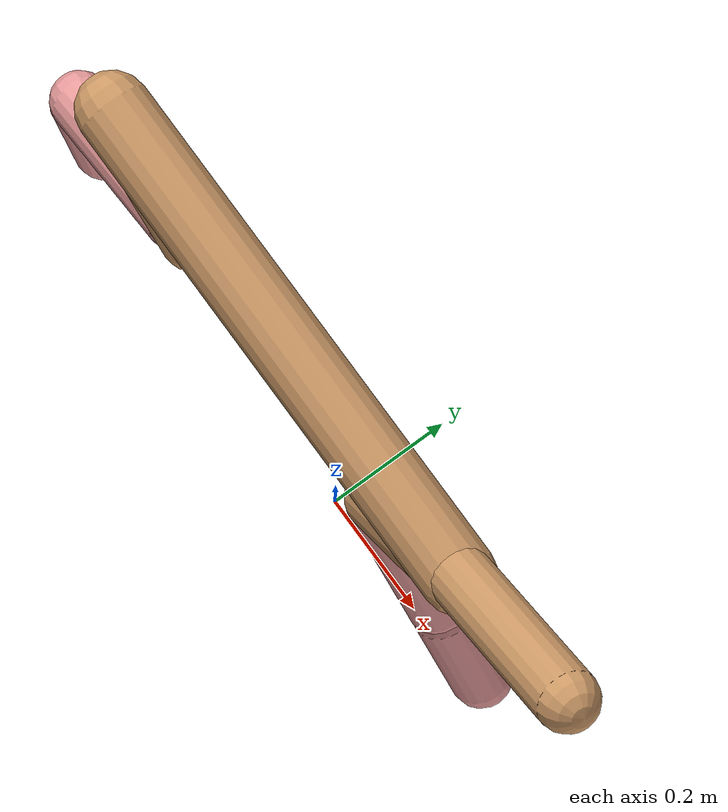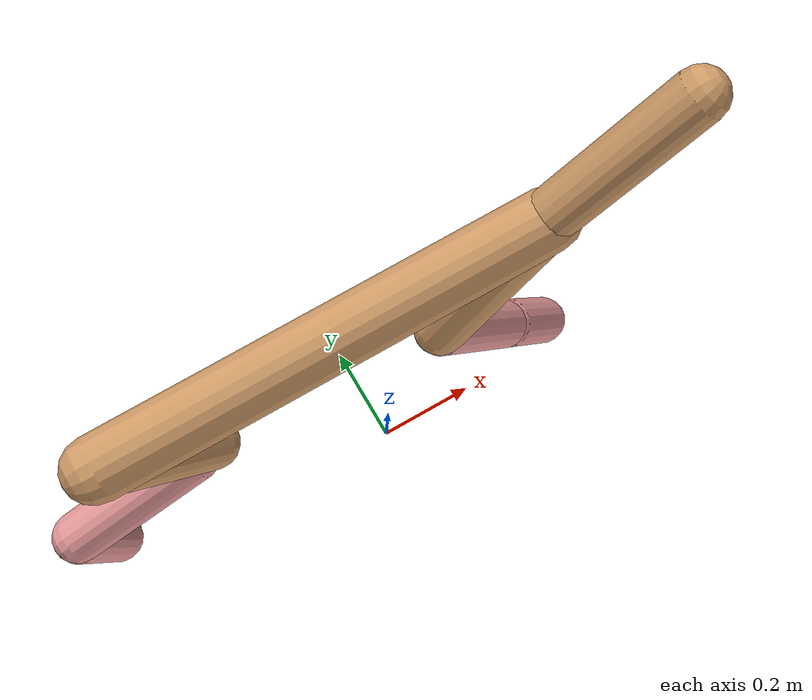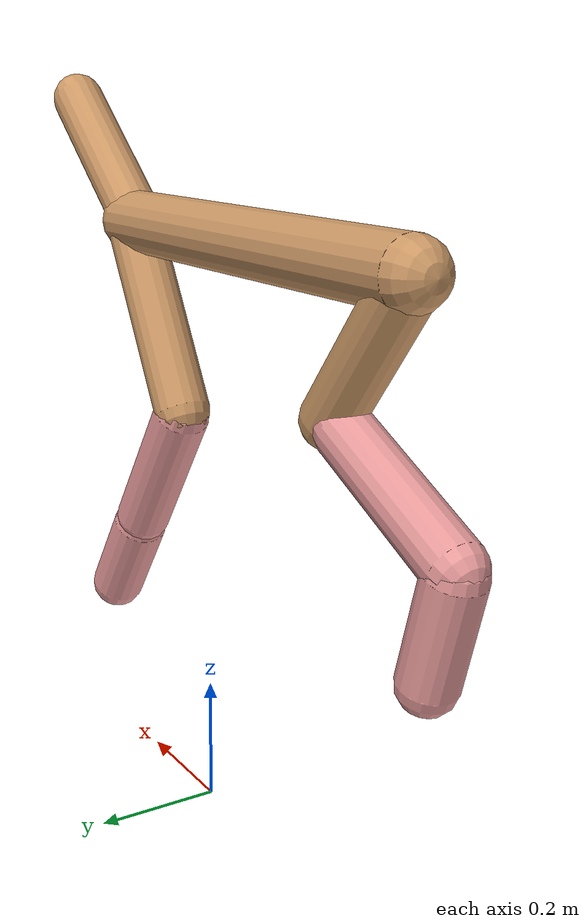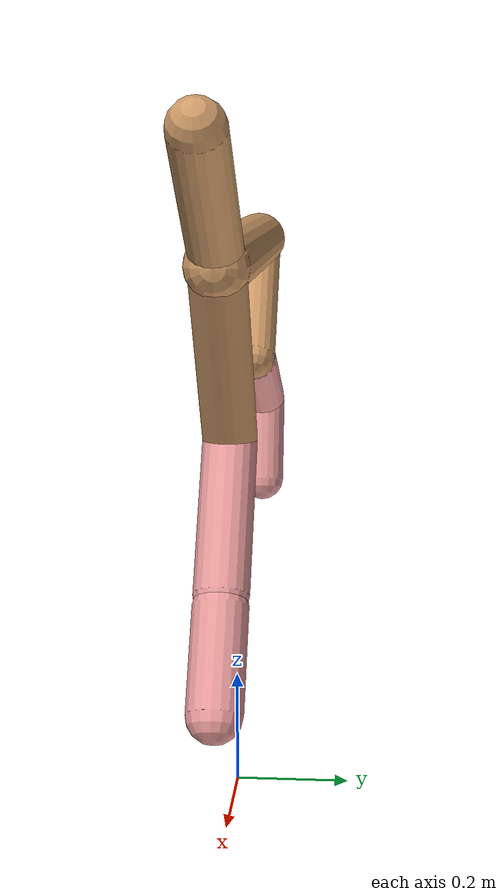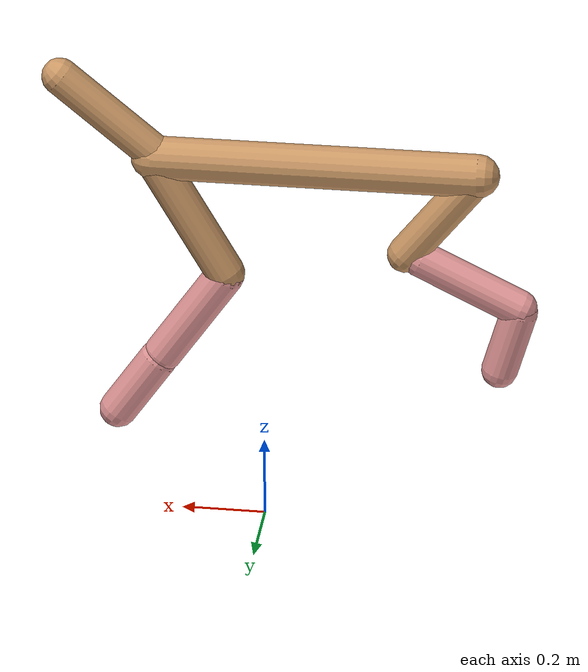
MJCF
<mujoco model="cheetah">
  <compiler angle="radian" coordinate="local" inertiafromgeom="true" settotalmass="14" />
  <default>
    <joint armature=".1" damping=".01" limited="true" solimplimit="0 .8 .03" solreflimit=".02 1" stiffness="8" />
    <geom conaffinity="0" condim="3" contype="1" friction="0.8 .1 .1" rgba="0.8 0.6 .4 1" solimp="0.0 0.8 0.01" solref="0.02 1" />
    <motor ctrllimited="true" ctrlrange="-1 1" />
  </default>
  <size nstack="300000" nuser_geom="1" />
  <option gravity="0 0 -9.81" timestep="0.01" />
  <worldbody>
    <body name="torso" pos="0.0 0.0 0.942756428586907">
      <joint armature="0" axis="1 0 0" damping="0" limited="false" name="ignorex" pos="0 0 0" stiffness="0" type="slide" />
      <joint armature="0" axis="0 0 1" damping="0" limited="false" name="ignorez" pos="0 0 0" stiffness="0" type="slide" />
      <joint armature="0" axis="0 1 0" damping="0" limited="false" name="ignorey" pos="0 0 0" stiffness="0" type="hinge" />
      <geom fromto="-0.5 0.0 0.0 0.2611653780179546 0.0 0.0" name="torso" size="0.051502360916274116" type="capsule" />
      <geom axisangle="0 1 0 .87" name="head" pos="0.36116537801795456 0.0 0.1" size="0.043657464845142664 0.15" type="capsule" />

      <body name="bthigh" pos="-.5 0 0">
        <joint axis="0 1 0" damping="6" name="bthigh" pos="0 0 0" range="-.52 1.05" stiffness="240" type="hinge" />
        <geom axisangle="0 1 0 -3.8" name="bthigh" pos="0.08886777846942007 0.0 -0.11552811201024608" size="0.04344198533105165 0.12674179915232905" type="capsule" />
        <body name="bshin" pos="0.13773555693884013 0.0 -0.22105622402049216">
          <joint axis="0 1 0" damping="4.5" name="bshin" pos="0 0 0" range="-.785 .785" stiffness="180" type="hinge" />
          <geom axisangle="0 1 0 -2.03" name="bshin" pos="-0.12310624348597113 0.0 -0.061553121742985564" rgba="0.9 0.6 0.6 1" size="0.04344198533105165 0.13111220601965076" type="capsule" />
          <body name="bfoot" pos="-0.24621248697194226 0.0 -0.12310624348597113">
            <joint axis="0 1 0" damping="3" name="bfoot" pos="0 0 0" range="-.4 .785" stiffness="120" type="hinge" />
            <geom axisangle="0 1 0 -.27" name="bfoot" pos="0.026502716680837392 0.0 -0.08569211726804091" rgba="0.9 0.6 0.6 1" size="0.04344198533105165 0.08216364910564782" type="capsule" />
            <inertial mass="10" />
          </body>
        </body>
      </body>
      <body name="fthigh" pos="0.2611653780179546 0.0 0.0">
        <joint axis="0 1 0" damping="4.5" name="fthigh" pos="0 0 0" range="-1.5 0.8" stiffness="180" type="hinge" />
        <geom axisangle="0 1 0 .52" name="fthigh" pos="-0.08701703428146275 0.0 -0.14917205876822182" size="0.04596001597125657 0.16677259937453834" type="capsule" />
        <body name="fshin" pos="-0.1740340685629255 0.0 -0.29834411753644363">
          <joint axis="0 1 0" damping="3" name="fshin" pos="0 0 0" range="-1.2 1.1" stiffness="120" type="hinge" />
          <geom axisangle="0 1 0 -.6" name="fshin" pos="0.08075936104309459 0.0 -0.11182065375197711" rgba="0.9 0.6 0.6 1" size="0.04596001597125657 0.13291650777218844" type="capsule" />
          <body name="ffoot" pos="0.16151872208618917 0.0 -0.22364130750395422">
            <joint axis="0 1 0" damping="1.5" name="ffoot" pos="0 0 0" range="-3.1 -0.3" stiffness="60" type="hinge" />
            <geom axisangle="0 1 0 -.6" name="ffoot" pos="0.054611994468511116 0.0 -0.08495199139546174" rgba="0.9 0.6 0.6 1" size="0.04596001597125657 0.0877750523023886" type="capsule" />
            <inertial mass="10" />
          </body>
        </body>
      </body>
    </body>
  </worldbody>
  <actuator>
    <motor gear="120" joint="bthigh" name="bthigh" />
    <motor gear="90" joint="bshin" name="bshin" />
    <motor gear="60" joint="bfoot" name="bfoot" />
    <motor gear="120" joint="fthigh" name="fthigh" />
    <motor gear="60" joint="fshin" name="fshin" />
    <motor gear="30" joint="ffoot" name="ffoot" />
  </actuator>
</mujoco>
